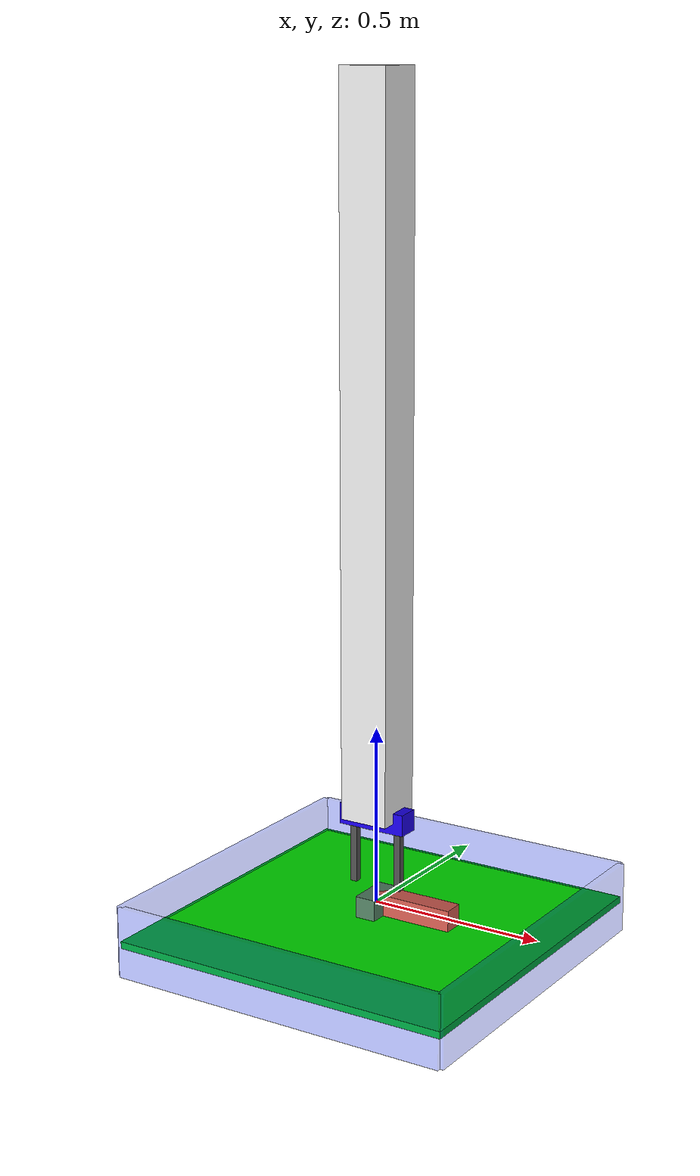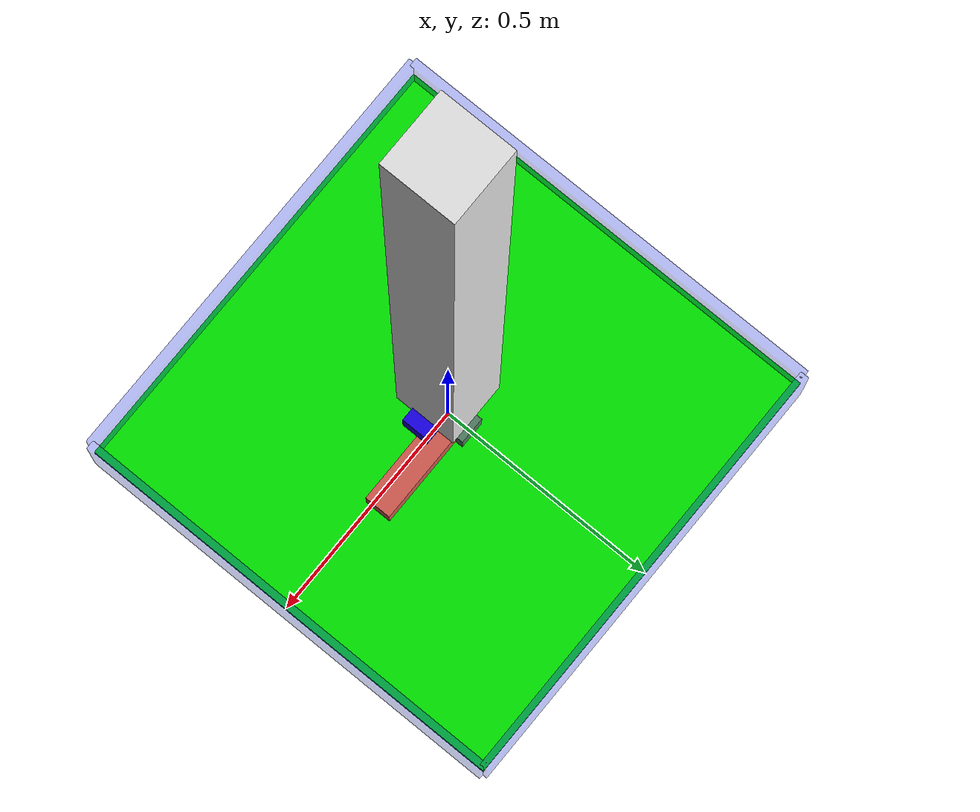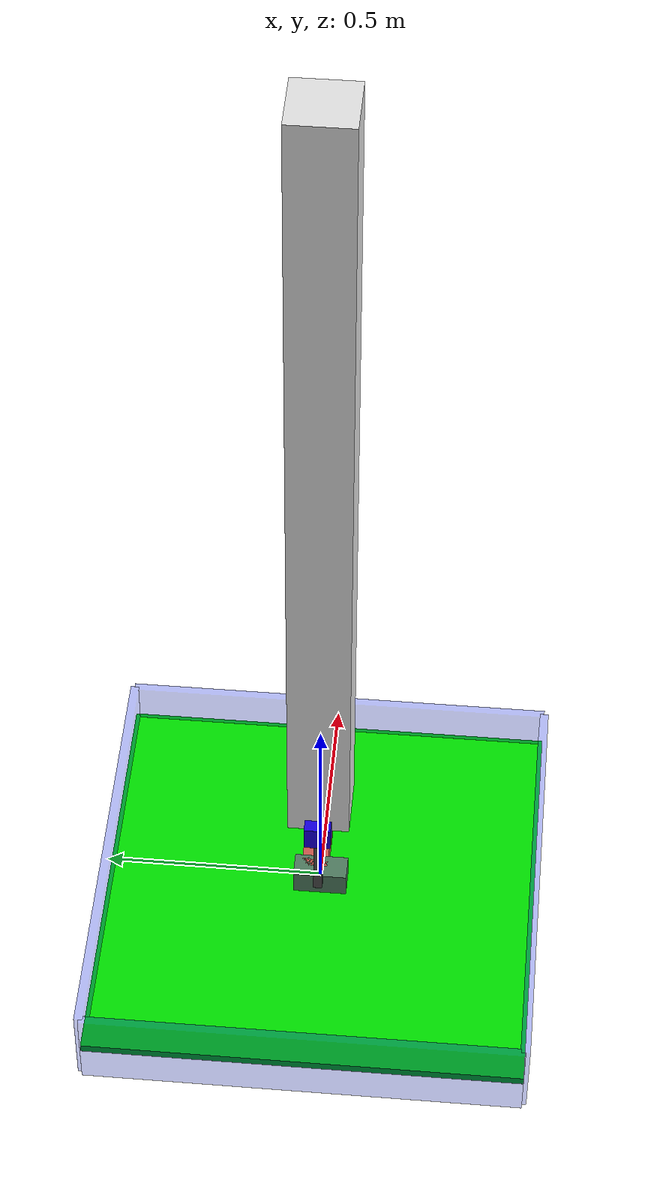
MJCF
<mujoco model="pushing2d">

    <compiler inertiafromgeom="auto" angle="radian" coordinate="local" />
    <option timestep="0.01" gravity="0 0 -9.81" iterations="20" integrator="Euler" />
    <default>
        <joint limited="false" damping="1" />
        <geom contype="1" conaffinity="1" condim="4" friction=".5 .1 .1" density="1000" margin="0.002" />
    </default>

    <worldbody>
        <camera name="maincam" mode= "fixed" fovy="32" euler="0.7 0 0" pos="0 -1.1 1.3"/>
        <body name="gripper" pos="0 0 0.25">
            <inertial pos="0 0 0" mass="30" diaginertia="166.667 166.667 166.667"/>
            <geom type="box" size=".1 .03 .03" rgba="0.1 0.0 0.9 1" />
            <geom type="box" size=".07 .07 1" rgba="0.9 0.9 0.9 1" pos="0 0 1"/>
            <joint name="ball_x" type="slide" pos="0 0 0" axis="1 0 0" limited="true" range="-0.35 0.35"/>
            <joint name="ball_y" type="slide" pos="0 0 0" axis="0 1 0" limited="true" range="-0.35 0.35"/>
            <joint name="ball_z" type="slide" pos="0 0 0" axis="0 0 1"  limited="true" range="-0.08 0.25"/>

            <body name="finger1" pos="-0.07 0 -0.1">
                <geom type="box" size=".01 .01 .1" rgba="0.3 0.3 0.3 1" />
            </body>

            <body name="finger2" pos="0.07 0 -0.1">
                <geom type="box" size=".01 .01 .1" rgba="0.3 0.3 0.3 1" />
            </body>

        </body>

        <body name="container" pos="0  0  -0.05">

            <body name="border_front" pos="0 -.5  0">
                 <geom type="box" size=".5 .01 .1" rgba="0 .1 .9 .3"/>
            </body>

            <body name="border_rear" pos="0 .5  0">
                 <geom type="box" size=".5 .01 .1" rgba="0 .1 .9 .3"/>
            </body>

            <body name="border_right" pos=".5 0  0">
                 <geom type="box" size=".01  .5 .1" rgba="0 .1 .9 .3"/>
            </body>

            <body name="border_left" pos="-.5 0  0">
                 <geom type="box" size=".01  .5 .1" rgba="0 .1 .9 .3"/>
            </body>

            <body name="table" pos="0 0 -.01">
                 <geom type="box" size=".5  .5 .01" rgba="0 .9 0 1"/>
            </body>
        </body>

        <body name="object0" pos="0 0 0">
            <joint type="free"/>
            <geom rgba="0.319217074608 0.495866606898 0.384181379723 1" size=".03 0.0617343698479 .03" type="box"/>
            <geom pos="0.118125339441 0.0145113905596 0.0" rgba="0.821016523058 0.357089461429 0.315011249855 1" size="0.118125339441 .03 .03" type="box"/>
        </body>

        <body name="light_body0" pos="0 0  1">
             <light name="light0" mode="fixed" directional="false" active="true" castshadow="true"/>
        </body>

    </worldbody>

    <sensor>
        <framepos name="sens_ob0" objtype="xbody" objname="object0"/>
        <framequat name="sens_ob0" objtype="xbody" objname="object0"/>
        <framepos name="gripper" objtype="xbody" objname="object0"/>
        <framequat name="gripper" objtype="xbody" objname="object0"/>
    </sensor>

    <actuator>
        <motor joint="ball_x" ctrlrange="-100.0 100.0" ctrllimited="true"/>
        <motor joint="ball_y" ctrlrange="-100.0 100.0" ctrllimited="true"/>
        <motor joint="ball_z" ctrlrange="-100.0 100.0" ctrllimited="true"/>
    </actuator>

</mujoco>
